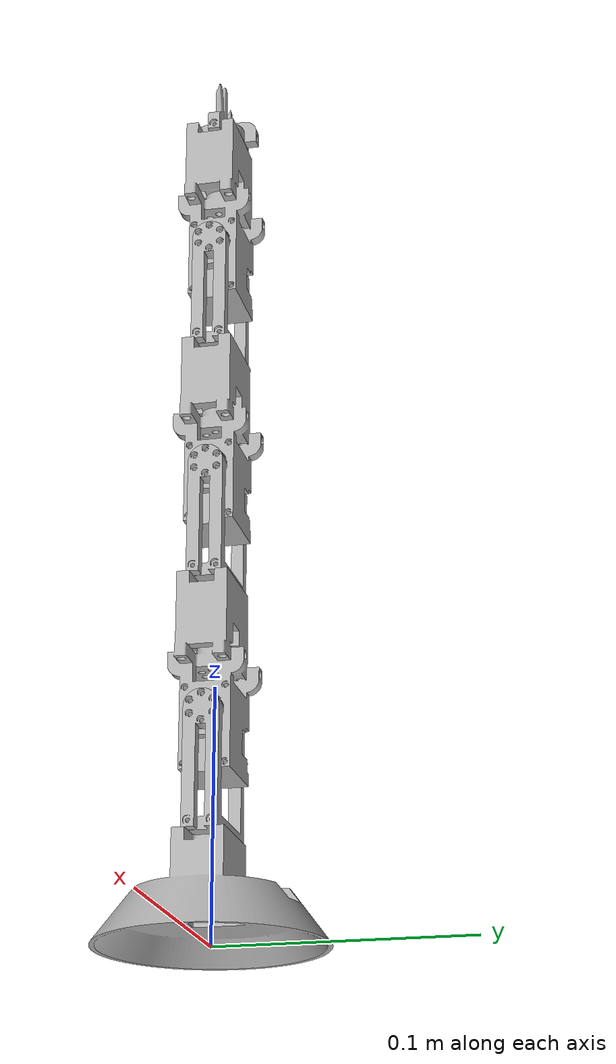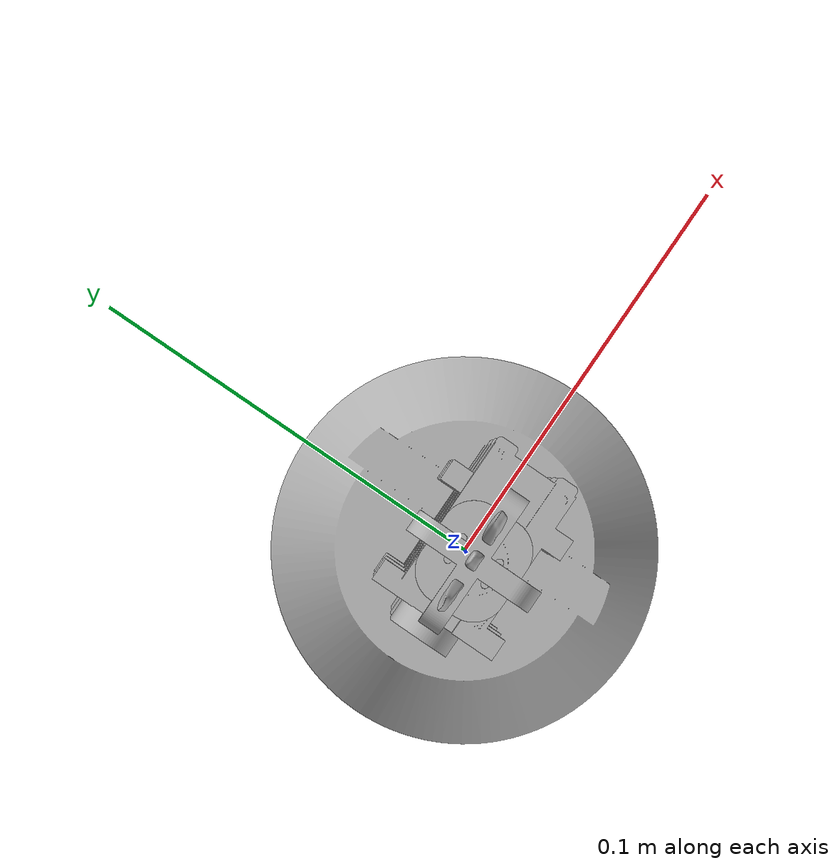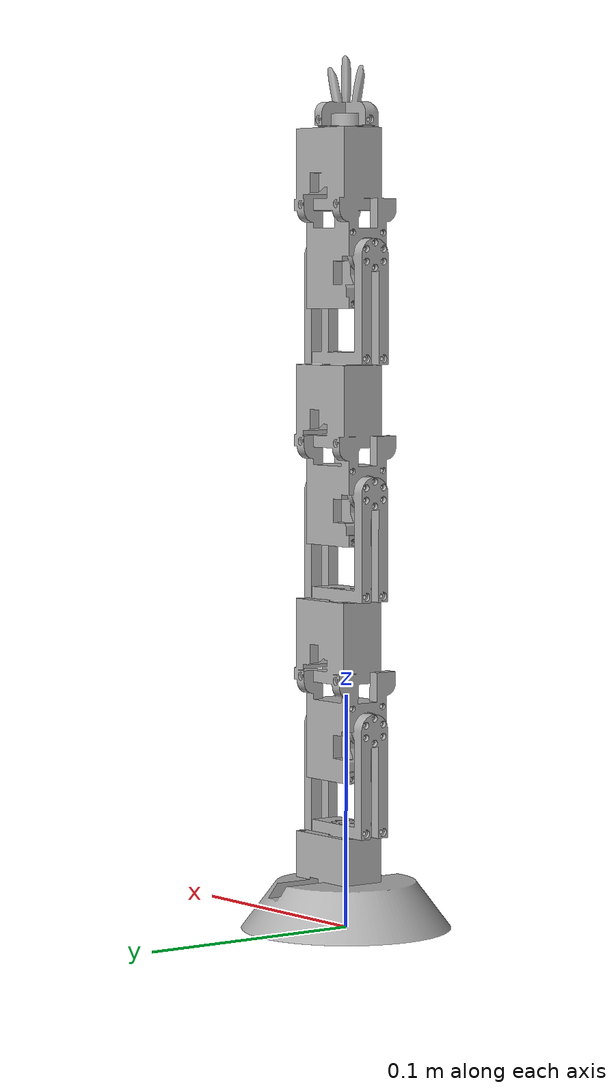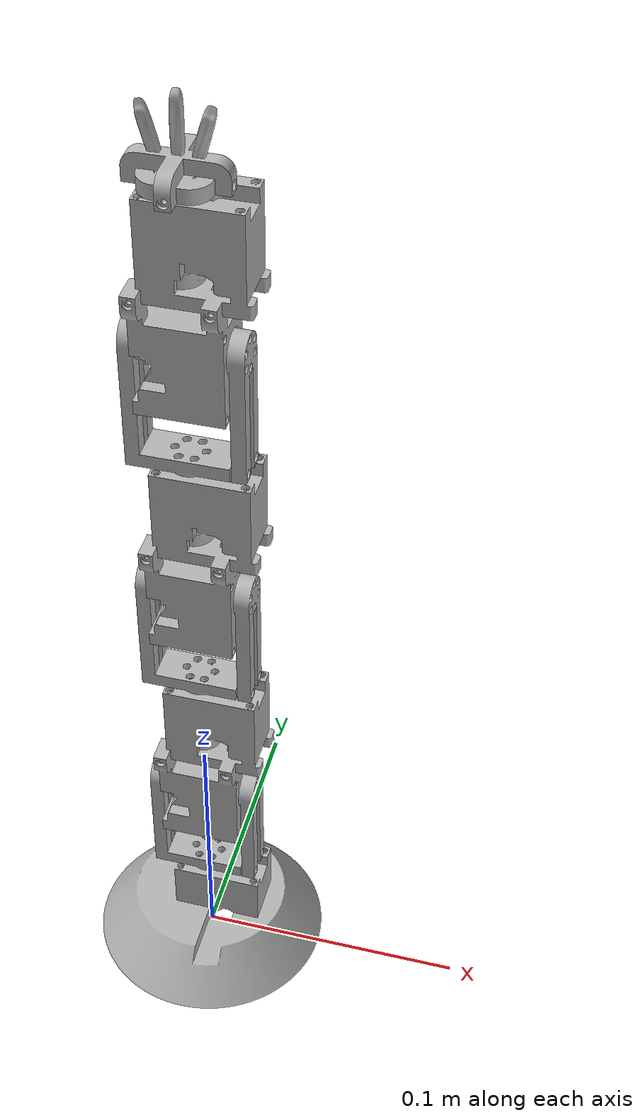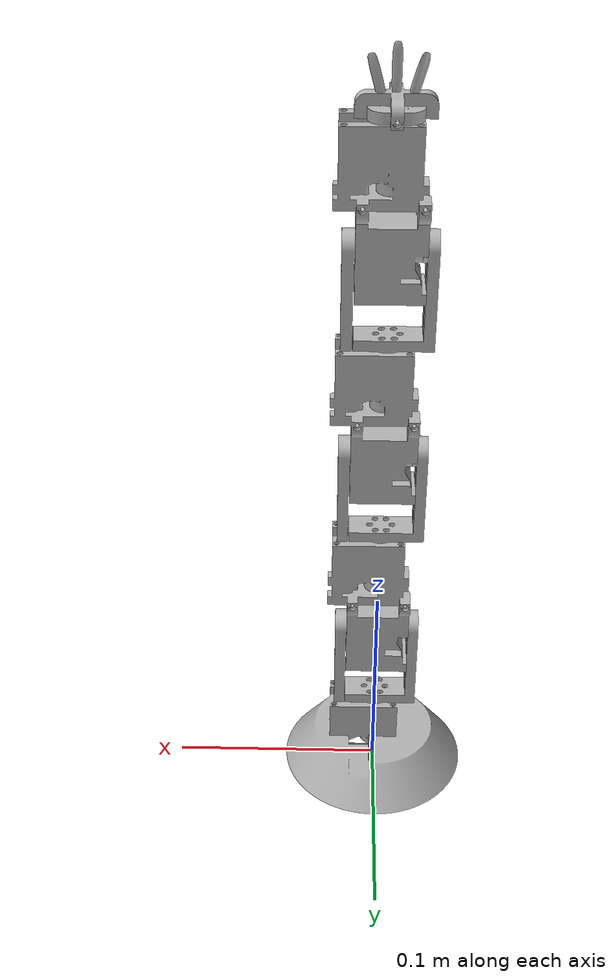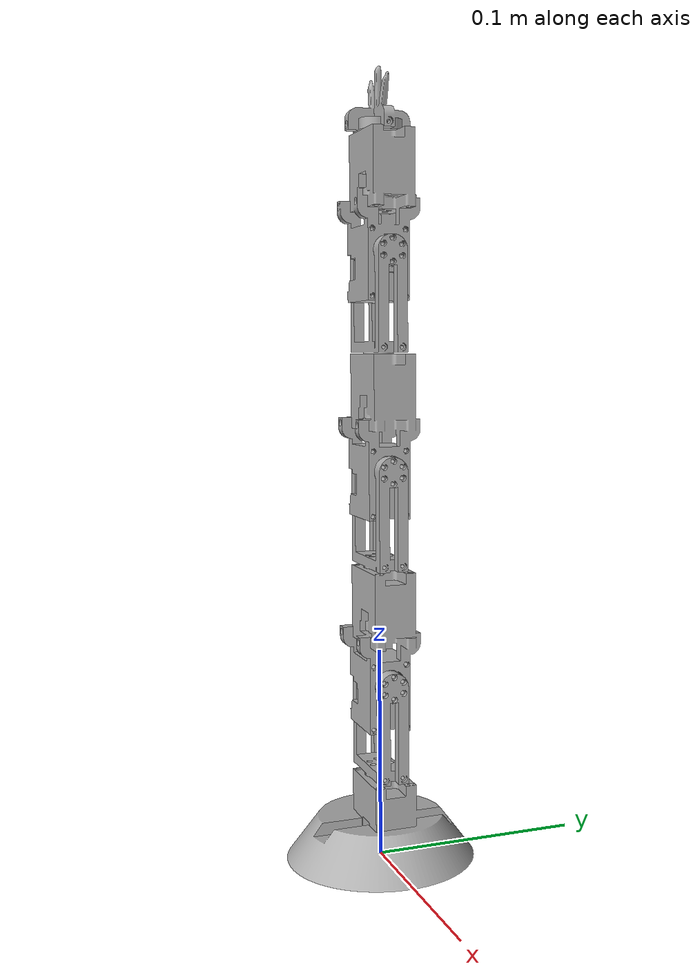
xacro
<?xml version="1.0"?>
<robot xmlns:xacro="http://www.ros.org/wiki/xacro" name="panda_arm">
    <xacro:arg name="initial_positions_file" default="$(find real_arm_config)/config/initial_positions.yaml" />
    <xacro:arg name="motor_params_file" default="$(find real_arm_config)/config/motor_params.yaml" />
    <!-- 控制用串口。转接板上有两个口：
         /dev/ttyACM0 = 与电机通信（控制用，默认）
         /dev/ttyACM1 = 固件更新用，误接会导致"电机全部无响应"
         不确定时用 ls /dev/ttyACM* 查看 -->
    <xacro:arg name="serial_port" default="/dev/ttyACM0" />
    <xacro:arg name="motor_id_joint1" default="1" />
    <xacro:arg name="motor_id_joint2" default="2" />
    <xacro:arg name="motor_id_joint3" default="3" />
    <xacro:arg name="motor_id_joint4" default="4" />
    <xacro:arg name="motor_id_joint5" default="5" />
    <xacro:arg name="motor_id_joint6" default="6" />
    <xacro:arg name="motor_id_joint7" default="7" />

    <!-- Import panda_arm urdf file -->
    <xacro:include filename="$(find panda_arm_description)/urdf/panda_arm.xacro" />

    <!-- Import control_xacro -->
    <xacro:include filename="$(find real_arm_config)/config/panda_arm.ros2_control.xacro" />

    <xacro:panda_arm_ros2_control
        name="RealArmSystem"
        initial_positions_file="$(arg initial_positions_file)"
        motor_params_file="$(arg motor_params_file)"
        serial_port="$(arg serial_port)"
        motor_id_joint1="$(arg motor_id_joint1)"
        motor_id_joint2="$(arg motor_id_joint2)"
        motor_id_joint3="$(arg motor_id_joint3)"
        motor_id_joint4="$(arg motor_id_joint4)"
        motor_id_joint5="$(arg motor_id_joint5)"
        motor_id_joint6="$(arg motor_id_joint6)"
        motor_id_joint7="$(arg motor_id_joint7)"/>

</robot>

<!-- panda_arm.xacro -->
<robot name="panda_arm" xmlns:xacro="http://www.ros.org/wiki/xacro">

<material name="silver">
  <color rgba="0.700 0.700 0.700 1.000"/>
</material>

<xacro:include filename="$(find panda_arm_description)/urdf/panda_arm.gazebo" />

<link name="base_link">
  <inertial>
    <origin xyz="0.0019681926497810984 6.604228079970757e-06 0.01921365770142108" rpy="0 0 0"/>
    <mass value="0.08166160402090158"/>
    <inertia ixx="2.4e-05" iyy="2.8e-05" izz="4e-05" ixy="-0.0" iyz="0.0" ixz="-1e-06"/>
  </inertial>
  <visual>
    <origin xyz="0 0 0" rpy="0 0 0"/>
    <geometry>
      <mesh filename="file://$(find panda_arm_description)/meshes/base_link.stl" scale="0.001 0.001 0.001"/>
    </geometry>
    <material name="silver"/>
  </visual>
  <collision>
    <origin xyz="0 0 0" rpy="0 0 0"/>
    <geometry>
      <mesh filename="file://$(find panda_arm_description)/meshes/base_link.stl" scale="0.001 0.001 0.001"/>
    </geometry>
  </collision>
</link>

<link name="link_1_1">
  <inertial>
    <origin xyz="0.0001762984058800439 -8.158286656627589e-06 0.023387610620853705" rpy="0 0 0"/>
    <mass value="0.009982244246719816"/>
    <inertia ixx="3e-06" iyy="6e-06" izz="3e-06" ixy="-0.0" iyz="-0.0" ixz="-0.0"/>
  </inertial>
  <visual>
    <origin xyz="0.0 -0.0 -0.0385" rpy="0 0 0"/>
    <geometry>
      <mesh filename="file://$(find panda_arm_description)/meshes/link_1_1.stl" scale="0.001 0.001 0.001"/>
    </geometry>
    <material name="silver"/>
  </visual>
  <collision>
    <origin xyz="0.0 -0.0 -0.0385" rpy="0 0 0"/>
    <geometry>
      <mesh filename="file://$(find panda_arm_description)/meshes/link_1_1.stl" scale="0.001 0.001 0.001"/>
    </geometry>
  </collision>
</link>

<link name="link_2_1">
  <inertial>
    <origin xyz="-0.010802129518961404 -6.869752142661322e-11 0.017141095389134303" rpy="0 0 0"/>
    <mass value="0.09027650074887805"/>
    <inertia ixx="5.2e-05" iyy="5.6e-05" izz="1.1e-05" ixy="0.0" iyz="0.0" ixz="-5e-06"/>
  </inertial>
  <visual>
    <origin xyz="-0.0135 -0.0 -0.0865" rpy="0 0 0"/>
    <geometry>
      <mesh filename="file://$(find panda_arm_description)/meshes/link_2_1.stl" scale="0.001 0.001 0.001"/>
    </geometry>
    <material name="silver"/>
  </visual>
  <collision>
    <origin xyz="-0.0135 -0.0 -0.0865" rpy="0 0 0"/>
    <geometry>
      <mesh filename="file://$(find panda_arm_description)/meshes/link_2_1.stl" scale="0.001 0.001 0.001"/>
    </geometry>
  </collision>
</link>

<link name="link_3_1">
  <inertial>
    <origin xyz="0.00017629840588666003 -8.158286657802024e-06 0.02338761062085365" rpy="0 0 0"/>
    <mass value="0.009982244246719816"/>
    <inertia ixx="3e-06" iyy="6e-06" izz="3e-06" ixy="-0.0" iyz="-0.0" ixz="-0.0"/>
  </inertial>
  <visual>
    <origin xyz="-0.0 -0.0 -0.139" rpy="0 0 0"/>
    <geometry>
      <mesh filename="file://$(find panda_arm_description)/meshes/link_3_1.stl" scale="0.001 0.001 0.001"/>
    </geometry>
    <material name="silver"/>
  </visual>
  <collision>
    <origin xyz="-0.0 -0.0 -0.139" rpy="0 0 0"/>
    <geometry>
      <mesh filename="file://$(find panda_arm_description)/meshes/link_3_1.stl" scale="0.001 0.001 0.001"/>
    </geometry>
  </collision>
</link>

<link name="link_4_1">
  <inertial>
    <origin xyz="-0.010802129518954784 -6.869869638175846e-11 0.01714109538913408" rpy="0 0 0"/>
    <mass value="0.09027650074887757"/>
    <inertia ixx="5.2e-05" iyy="5.6e-05" izz="1.1e-05" ixy="0.0" iyz="0.0" ixz="-5e-06"/>
  </inertial>
  <visual>
    <origin xyz="-0.0135 0.0 -0.187" rpy="0 0 0"/>
    <geometry>
      <mesh filename="file://$(find panda_arm_description)/meshes/link_4_1.stl" scale="0.001 0.001 0.001"/>
    </geometry>
    <material name="silver"/>
  </visual>
  <collision>
    <origin xyz="-0.0135 0.0 -0.187" rpy="0 0 0"/>
    <geometry>
      <mesh filename="file://$(find panda_arm_description)/meshes/link_4_1.stl" scale="0.001 0.001 0.001"/>
    </geometry>
  </collision>
</link>

<link name="link_5_1">
  <inertial>
    <origin xyz="0.00017629840589327702 -8.158286658976455e-06 0.023387610620853705" rpy="0 0 0"/>
    <mass value="0.009982244246719816"/>
    <inertia ixx="3e-06" iyy="6e-06" izz="3e-06" ixy="-0.0" iyz="-0.0" ixz="-0.0"/>
  </inertial>
  <visual>
    <origin xyz="-0.0 0.0 -0.2395" rpy="0 0 0"/>
    <geometry>
      <mesh filename="file://$(find panda_arm_description)/meshes/link_5_1.stl" scale="0.001 0.001 0.001"/>
    </geometry>
    <material name="silver"/>
  </visual>
  <collision>
    <origin xyz="-0.0 0.0 -0.2395" rpy="0 0 0"/>
    <geometry>
      <mesh filename="file://$(find panda_arm_description)/meshes/link_5_1.stl" scale="0.001 0.001 0.001"/>
    </geometry>
  </collision>
</link>

<link name="link_6_1">
  <inertial>
    <origin xyz="-0.010802129518948166 -6.869987029215959e-11 0.017141095389134053" rpy="0 0 0"/>
    <mass value="0.09027650074887705"/>
    <inertia ixx="5.2e-05" iyy="5.6e-05" izz="1.1e-05" ixy="0.0" iyz="0.0" ixz="-5e-06"/>
  </inertial>
  <visual>
    <origin xyz="-0.0135 0.0 -0.2875" rpy="0 0 0"/>
    <geometry>
      <mesh filename="file://$(find panda_arm_description)/meshes/link_6_1.stl" scale="0.001 0.001 0.001"/>
    </geometry>
    <material name="silver"/>
  </visual>
  <collision>
    <origin xyz="-0.0135 0.0 -0.2875" rpy="0 0 0"/>
    <geometry>
      <mesh filename="file://$(find panda_arm_description)/meshes/link_6_1.stl" scale="0.001 0.001 0.001"/>
    </geometry>
  </collision>
</link>

<link name="end_link_1">
  <inertial>
    <origin xyz="-1.1367783213616225e-13 -7.707772354158081e-11 0.0037951210982622996" rpy="0 0 0"/>
    <mass value="0.002457178205337948"/>
    <!-- 惯量下限：Fusion 360 导出器把惯量四舍五入到 1e-06，本件 2.46 g 真值约 1.8e-07
         被抹成 0.0 → ODE 质量矩阵非正定 → 仿真里 NaN 炸模型。取 1e-06 作下限，
         拿到 CAD 精确惯量后请替换本行。 -->
    <inertia ixx="1e-06" iyy="1e-06" izz="1e-06" ixy="-0.0" iyz="0.0" ixz="-0.0"/>
  </inertial>
  <visual>
    <origin xyz="-0.0 0.0 -0.34" rpy="0 0 0"/>
    <geometry>
      <mesh filename="file://$(find panda_arm_description)/meshes/end_link_1.stl" scale="0.001 0.001 0.001"/>
    </geometry>
    <material name="silver"/>
  </visual>
  <collision>
    <origin xyz="-0.0 0.0 -0.34" rpy="0 0 0"/>
    <geometry>
      <mesh filename="file://$(find panda_arm_description)/meshes/end_link_1.stl" scale="0.001 0.001 0.001"/>
    </geometry>
  </collision>
</link>

<link name="finger_1">
  <inertial>
    <origin xyz="5.308110733053467e-05 5.9051163756052054e-05 0.0033389105913541606" rpy="0 0 0"/>
    <mass value="0.002668080332572337"/>
    <!-- 惯量下限：同上，2.67 g 真值约 2.0e-07 被导出器抹成 0.0，取 1e-06 作下限。 -->
    <inertia ixx="1e-06" iyy="1e-06" izz="1e-06" ixy="-0.0" iyz="-0.0" ixz="-0.0"/>
  </inertial>
  <visual>
    <origin xyz="0.0 -0.0 -0.347" rpy="0 0 0"/>
    <geometry>
      <mesh filename="file://$(find panda_arm_description)/meshes/finger_1.stl" scale="0.001 0.001 0.001"/>
    </geometry>
    <material name="silver"/>
  </visual>
  <collision>
    <origin xyz="0.0 -0.0 -0.347" rpy="0 0 0"/>
    <geometry>
      <mesh filename="file://$(find panda_arm_description)/meshes/finger_1.stl" scale="0.001 0.001 0.001"/>
    </geometry>
  </collision>
</link>

<joint name="joint_1" type="revolute">
  <origin xyz="0.0 0.0 0.0385" rpy="0 0 0"/>
  <parent link="base_link"/>
  <child link="link_1_1"/>
  <axis xyz="-0.0 -0.0 1.0"/>
  <limit upper="2.4435" lower="-2.4435" effort="100" velocity="100"/>
  <dynamics damping="0.1" friction="0.02"/>
  <!-- damping相当于阻尼，friction相当于关节内部摩擦力。
      坑：gazebo内部实现damping和friction使用的是底层的力矩接口，如果我也要用effect接口，就会相互覆盖导致gazebo里模型塌成一团显示不完整，而日志看不到报错难以发现问题 -->
</joint>

<joint name="joint_2" type="revolute">
  <origin xyz="0.0135 0.0 0.048" rpy="0 0 0"/>
  <parent link="link_1_1"/>
  <child link="link_2_1"/>
  <axis xyz="-1.0 -0.0 0.0"/>
  <limit upper="2.0071" lower="-2.0071" effort="100" velocity="100"/>
  <dynamics damping="0.1" friction="0.02"/>
</joint>

<joint name="joint_3" type="revolute">
  <origin xyz="-0.0135 0.0 0.0525" rpy="0 0 0"/>
  <parent link="link_2_1"/>
  <child link="link_3_1"/>
  <axis xyz="0.0 -0.0 1.0"/>
  <limit upper="2.0071" lower="-2.0071" effort="100" velocity="100"/>
  <dynamics damping="0.1" friction="0.02"/>
</joint>

<joint name="joint_4" type="revolute">
  <origin xyz="0.0135 -0.0 0.048" rpy="0 0 0"/>
  <parent link="link_3_1"/>
  <child link="link_4_1"/>
  <axis xyz="-1.0 -0.0 0.0"/>
  <limit upper="2.0071" lower="-2.0071" effort="100" velocity="100"/>
  <dynamics damping="0.1" friction="0.02"/>
</joint>

<joint name="joint_5" type="revolute">
  <origin xyz="-0.0135 0.0 0.0525" rpy="0 0 0"/>
  <parent link="link_4_1"/>
  <child link="link_5_1"/>
  <axis xyz="0.0 -0.0 1.0"/>
  <limit upper="2.0071" lower="-2.0071" effort="100" velocity="100"/>
  <dynamics damping="0.1" friction="0.02"/>
</joint>

<joint name="joint_6" type="revolute">
  <origin xyz="0.0135 0.0 0.048" rpy="0 0 0"/>
  <parent link="link_5_1"/>
  <child link="link_6_1"/>
  <axis xyz="-1.0 -0.0 0.0"/>
  <limit upper="2.0071" lower="-2.0071" effort="100" velocity="100"/>
  <dynamics damping="0.1" friction="0.02"/>
</joint>

<joint name="joint_7" type="revolute">
  <origin xyz="-0.0135 0.0 0.0525" rpy="0 0 0"/>
  <parent link="link_6_1"/>
  <child link="end_link_1"/>
  <axis xyz="0.0 -0.0 1.0"/>
  <limit upper="2.0071" lower="-2.0071" effort="100" velocity="100"/>
  <dynamics damping="0.1" friction="0.02"/>
</joint>

<joint name="end_joint" type="fixed">
  <origin xyz="-0.0 0.0 0.007" rpy="0 0 0"/>
  <parent link="end_link_1"/>
  <child link="finger_1"/>
</joint>

</robot>
